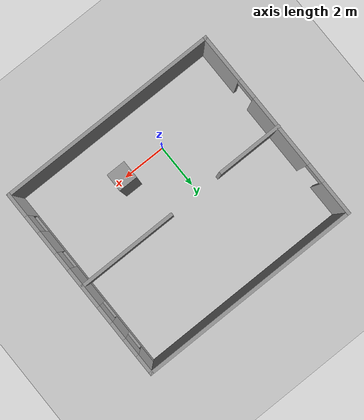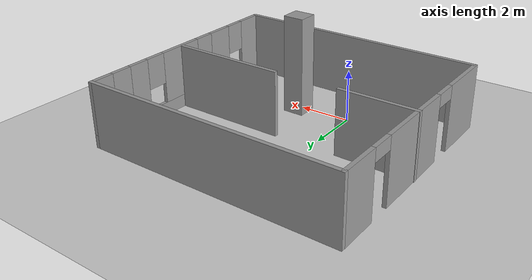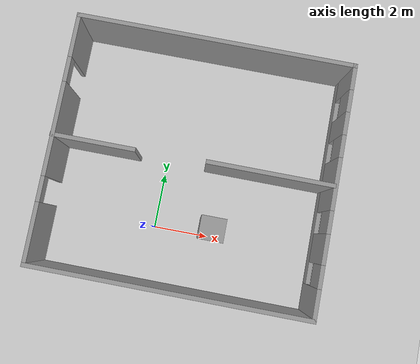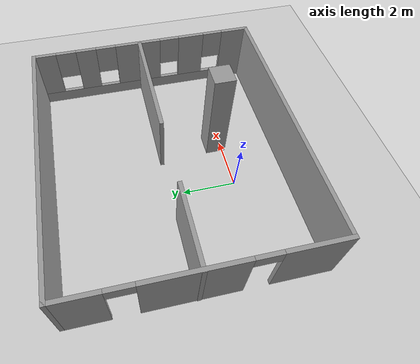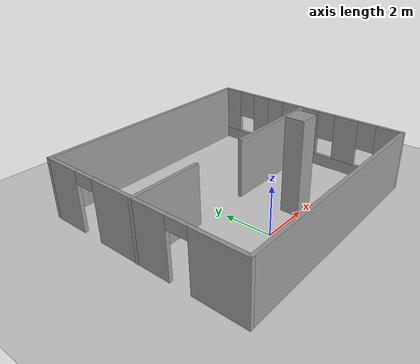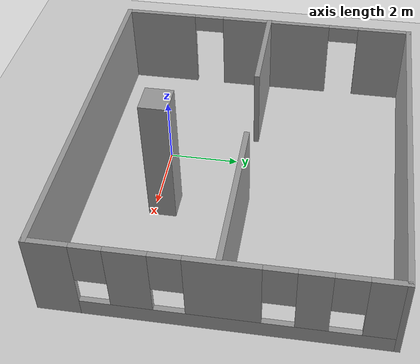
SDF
<sdf version="1.6">
 <world name="ur_world_1">
  <light name="sun" type="directional">
   <cast_shadows>0</cast_shadows>
   <pose>0 0 10 0 -0 0</pose>
   <diffuse>0.8 0.8 0.8 1</diffuse>
   <specular>0.2 0.2 0.2 1</specular>
   <attenuation>
    <range>1000</range>
    <constant>0.9</constant>
    <linear>0.01</linear>
    <quadratic>0.001</quadratic>
   </attenuation>
   <direction>-0.5 0.1 -0.9</direction>
  </light>
  <model name="ground_plane">
   <static>1</static>
   <link name="link">
    <collision name="collision">
     <geometry><plane><normal>0 0 1</normal><size>100 100</size></plane></geometry>
     <surface>
      <contact><collide_bitmask>65535</collide_bitmask></contact>
      <friction><ode><mu>100</mu><mu2>50</mu2></ode></friction>
     </surface>
    </collision>
    <visual name="visual">
     <cast_shadows>0</cast_shadows>
     <geometry><plane><normal>0 0 1</normal><size>100 100</size></plane></geometry>
     <material>
      <script><uri>file://media/materials/scripts/gazebo.material</uri><name>Gazebo/Grey</name></script>
     </material>
    </visual>
   </link>
  </model>
  <gravity>0 0 -9.8</gravity>
  <magnetic_field>6e-06 2.3e-05 -4.2e-05</magnetic_field>
  <atmosphere type="adiabatic"/>
  <physics name="default_physics" default="0" type="ode">
   <max_step_size>0.001</max_step_size>
   <real_time_factor>1</real_time_factor>
   <real_time_update_rate>3000</real_time_update_rate>
  </physics>
  <scene><ambient>0.4 0.4 0.4 1</ambient><background>0.7 0.7 0.7 1</background><shadows>0</shadows></scene>
  <audio><device>default</device></audio>
  <spherical_coordinates>
   <surface_model>EARTH_WGS84</surface_model>
   <latitude_deg>0</latitude_deg>
   <longitude_deg>0</longitude_deg>
   <elevation>0</elevation>
   <heading_deg>0</heading_deg>
  </spherical_coordinates>
  <model name="workshop_modify">
   <pose>1.00561 2.35752 0 0 -0 0</pose>
   <link name="Wall_0">
    <collision name="Wall_0_Collision">
     <geometry><box><size>10 0.15 2.5</size></box></geometry>
     <pose>0 0 1.25 0 -0 0</pose>
    </collision>
    <visual name="Wall_0_Visual">
     <pose>0 0 1.25 0 -0 0</pose>
     <geometry><box><size>10 0.15 2.5</size></box></geometry>
     <material>
      <script><uri>file://media/materials/scripts/gazebo.material</uri><name>Gazebo/Grey</name></script>
      <ambient>1 1 1 1</ambient>
     </material>
     <meta><layer>0</layer></meta>
    </visual>
    <pose>0.008121 -4.425 0 0 -0 0</pose>
   </link>
   <link name="Wall_1">
    <pose>4.93312 0 0 0 -0 1.5708</pose>
    <visual name="Wall_1_Visual_0">
     <pose>-3.92814 0 1.25 0 -0 0</pose>
     <geometry><box><size>1.14372 0.15 2.5</size></box></geometry>
     <material>
      <script><uri>file://media/materials/scripts/gazebo.material</uri><name>Gazebo/Grey</name></script>
      <ambient>1 1 1 1</ambient>
     </material>
     <meta><layer>0</layer></meta>
    </visual>
    <collision name="Wall_1_Collision_0">
     <geometry><box><size>1.14372 0.15 2.5</size></box></geometry>
     <pose>-3.92814 0 1.25 0 -0 0</pose>
    </collision>
    <visual name="Wall_1_Visual_1">
     <pose>0.57186 0 0.25 0 -0 0</pose>
     <geometry><box><size>7.85628 0.15 0.5</size></box></geometry>
     <material>
      <script><uri>file://media/materials/scripts/gazebo.material</uri><name>Gazebo/Grey</name></script>
      <ambient>1 1 1 1</ambient>
     </material>
     <meta><layer>0</layer></meta>
    </visual>
    <collision name="Wall_1_Collision_1">
     <geometry><box><size>7.85628 0.15 0.5</size></box></geometry>
     <pose>0.57186 0 0.25 0 -0 0</pose>
    </collision>
    <visual name="Wall_1_Visual_2">
     <pose>-2.02855 0 1.5 0 -0 0</pose>
     <geometry><box><size>1.05547 0.15 2</size></box></geometry>
     <material>
      <script><uri>file://media/materials/scripts/gazebo.material</uri><name>Gazebo/Grey</name></script>
      <ambient>1 1 1 1</ambient>
     </material>
     <meta><layer>0</layer></meta>
    </visual>
    <collision name="Wall_1_Collision_2">
     <geometry><box><size>1.05547 0.15 2</size></box></geometry>
     <pose>-2.02855 0 1.5 0 -0 0</pose>
    </collision>
    <visual name="Wall_1_Visual_3">
     <pose>0.222349 0 1.5 0 -0 0</pose>
     <geometry><box><size>1.84632 0.15 2</size></box></geometry>
     <material>
      <script><uri>file://media/materials/scripts/gazebo.material</uri><name>Gazebo/Grey</name></script>
      <ambient>1 1 1 1</ambient>
     </material>
     <meta><layer>0</layer></meta>
    </visual>
    <collision name="Wall_1_Collision_3">
     <geometry><box><size>1.84632 0.15 2</size></box></geometry>
     <pose>0.222349 0 1.5 0 -0 0</pose>
    </collision>
    <visual name="Wall_1_Visual_4">
     <pose>2.35157 0 1.5 0 -0 0</pose>
     <geometry><box><size>0.812128 0.15 2</size></box></geometry>
     <material>
      <script><uri>file://media/materials/scripts/gazebo.material</uri><name>Gazebo/Grey</name></script>
      <ambient>1 1 1 1</ambient>
     </material>
     <meta><layer>0</layer></meta>
    </visual>
    <collision name="Wall_1_Collision_4">
     <geometry><box><size>0.812128 0.15 2</size></box></geometry>
     <pose>2.35157 0 1.5 0 -0 0</pose>
    </collision>
    <visual name="Wall_1_Visual_5">
     <pose>4.02882 0 1.5 0 -0 0</pose>
     <geometry><box><size>0.942362 0.15 2</size></box></geometry>
     <material>
      <script><uri>file://media/materials/scripts/gazebo.material</uri><name>Gazebo/Grey</name></script>
      <ambient>1 1 1 1</ambient>
     </material>
     <meta><layer>0</layer></meta>
    </visual>
    <collision name="Wall_1_Collision_5">
     <geometry><box><size>0.942362 0.15 2</size></box></geometry>
     <pose>4.02882 0 1.5 0 -0 0</pose>
    </collision>
    <visual name="Wall_1_Visual_6">
     <pose>-2.95628 0 1.9 0 -0 0</pose>
     <geometry><box><size>0.8 0.15 1.2</size></box></geometry>
     <material>
      <script><uri>file://media/materials/scripts/gazebo.material</uri><name>Gazebo/Grey</name></script>
      <ambient>1 1 1 1</ambient>
     </material>
     <meta><layer>0</layer></meta>
    </visual>
    <collision name="Wall_1_Collision_6">
     <geometry><box><size>0.8 0.15 1.2</size></box></geometry>
     <pose>-2.95628 0 1.9 0 -0 0</pose>
    </collision>
    <visual name="Wall_1_Visual_7">
     <pose>-1.10081 0 1.9 0 -0 0</pose>
     <geometry><box><size>0.8 0.15 1.2</size></box></geometry>
     <material>
      <script><uri>file://media/materials/scripts/gazebo.material</uri><name>Gazebo/Grey</name></script>
      <ambient>1 1 1 1</ambient>
     </material>
     <meta><layer>0</layer></meta>
    </visual>
    <collision name="Wall_1_Collision_7">
     <geometry><box><size>0.8 0.15 1.2</size></box></geometry>
     <pose>-1.10081 0 1.9 0 -0 0</pose>
    </collision>
    <visual name="Wall_1_Visual_8">
     <pose>1.54551 0 1.9 0 -0 0</pose>
     <geometry><box><size>0.8 0.15 1.2</size></box></geometry>
     <material>
      <script><uri>file://media/materials/scripts/gazebo.material</uri><name>Gazebo/Grey</name></script>
      <ambient>1 1 1 1</ambient>
     </material>
     <meta><layer>0</layer></meta>
    </visual>
    <collision name="Wall_1_Collision_8">
     <geometry><box><size>0.8 0.15 1.2</size></box></geometry>
     <pose>1.54551 0 1.9 0 -0 0</pose>
    </collision>
    <visual name="Wall_1_Visual_9">
     <pose>3.15764 0 1.9 0 -0 0</pose>
     <geometry><box><size>0.8 0.15 1.2</size></box></geometry>
     <material>
      <script><uri>file://media/materials/scripts/gazebo.material</uri><name>Gazebo/Grey</name></script>
      <ambient>1 1 1 1</ambient>
     </material>
     <meta><layer>0</layer></meta>
    </visual>
    <collision name="Wall_1_Collision_9">
     <geometry><box><size>0.8 0.15 1.2</size></box></geometry>
     <pose>3.15764 0 1.9 0 -0 0</pose>
    </collision>
   </link>
   <link name="Wall_2">
    <collision name="Wall_2_Collision">
     <geometry><box><size>10 0.15 2.5</size></box></geometry>
     <pose>0 0 1.25 0 -0 0</pose>
    </collision>
    <visual name="Wall_2_Visual">
     <pose>0 0 1.25 0 -0 0</pose>
     <geometry><box><size>10 0.15 2.5</size></box></geometry>
     <material>
      <script><uri>file://media/materials/scripts/gazebo.material</uri><name>Gazebo/Grey</name></script>
      <ambient>1 1 1 1</ambient>
     </material>
     <meta><layer>0</layer></meta>
    </visual>
    <pose>0.008121 4.425 0 0 -0 3.14159</pose>
   </link>
   <link name="Wall_3">
    <pose>-4.91688 0 0 0 -0 -1.5708</pose>
    <visual name="Wall_3_Visual_0">
     <pose>-3.68881 0 1.25 0 -0 0</pose>
     <geometry><box><size>1.62238 0.15 2.5</size></box></geometry>
     <material>
      <script><uri>file://media/materials/scripts/gazebo.material</uri><name>Gazebo/Grey</name></script>
      <ambient>1 1 1 1</ambient>
     </material>
     <meta><layer>0</layer></meta>
    </visual>
    <collision name="Wall_3_Collision_0">
     <geometry><box><size>1.62238 0.15 2.5</size></box></geometry>
     <pose>-3.68881 0 1.25 0 -0 0</pose>
    </collision>
    <visual name="Wall_3_Visual_1">
     <pose>-0.298393 0 1.25 0 -0 0</pose>
     <geometry><box><size>3.35845 0.15 2.5</size></box></geometry>
     <material>
      <script><uri>file://media/materials/scripts/gazebo.material</uri><name>Gazebo/Grey</name></script>
      <ambient>1 1 1 1</ambient>
     </material>
     <meta><layer>0</layer></meta>
    </visual>
    <collision name="Wall_3_Collision_1">
     <geometry><box><size>3.35845 0.15 2.5</size></box></geometry>
     <pose>-0.298393 0 1.25 0 -0 0</pose>
    </collision>
    <visual name="Wall_3_Visual_2">
     <pose>3.39042 0 1.25 0 -0 0</pose>
     <geometry><box><size>2.21917 0.15 2.5</size></box></geometry>
     <material>
      <script><uri>file://media/materials/scripts/gazebo.material</uri><name>Gazebo/Grey</name></script>
      <ambient>1 1 1 1</ambient>
     </material>
     <meta><layer>0</layer></meta>
    </visual>
    <collision name="Wall_3_Collision_2">
     <geometry><box><size>2.21917 0.15 2.5</size></box></geometry>
     <pose>3.39042 0 1.25 0 -0 0</pose>
    </collision>
    <visual name="Wall_3_Visual_3">
     <pose>-2.42762 0 2.25 0 -0 0</pose>
     <geometry><box><size>0.9 0.15 0.5</size></box></geometry>
     <material>
      <script><uri>file://media/materials/scripts/gazebo.material</uri><name>Gazebo/Grey</name></script>
      <ambient>1 1 1 1</ambient>
     </material>
     <meta><layer>0</layer></meta>
    </visual>
    <collision name="Wall_3_Collision_3">
     <geometry><box><size>0.9 0.15 0.5</size></box></geometry>
     <pose>-2.42762 0 2.25 0 -0 0</pose>
    </collision>
    <visual name="Wall_3_Visual_4">
     <pose>1.83083 0 2.25 0 -0 0</pose>
     <geometry><box><size>0.9 0.15 0.5</size></box></geometry>
     <material>
      <script><uri>file://media/materials/scripts/gazebo.material</uri><name>Gazebo/Grey</name></script>
      <ambient>1 1 1 1</ambient>
     </material>
     <meta><layer>0</layer></meta>
    </visual>
    <collision name="Wall_3_Collision_4">
     <geometry><box><size>0.9 0.15 0.5</size></box></geometry>
     <pose>1.83083 0 2.25 0 -0 0</pose>
    </collision>
   </link>
   <link name="Wall_7">
    <collision name="Wall_7_Collision">
     <geometry><box><size>3 0.15 2.5</size></box></geometry>
     <pose>0 0 1.25 0 -0 0</pose>
    </collision>
    <visual name="Wall_7_Visual">
     <pose>0 0 1.25 0 -0 0</pose>
     <geometry><box><size>3 0.15 2.5</size></box></geometry>
     <material>
      <script><uri>file://media/materials/scripts/gazebo.material</uri><name>Gazebo/Grey</name></script>
      <ambient>1 1 1 1</ambient>
     </material>
     <meta><layer>0</layer></meta>
    </visual>
    <pose>-3.50812 0.08547 0 0 -0 0</pose>
   </link>
   <link name="Wall_9">
    <collision name="Wall_9_Collision">
     <geometry><box><size>4.5 0.15 2.5</size></box></geometry>
     <pose>0 0 1.25 0 -0 0</pose>
    </collision>
    <visual name="Wall_9_Visual">
     <pose>0 0 1.25 0 -0 0</pose>
     <geometry><box><size>4.5 0.15 2.5</size></box></geometry>
     <material>
      <script><uri>file://media/materials/scripts/gazebo.material</uri><name>Gazebo/Grey</name></script>
      <ambient>1 1 1 1</ambient>
     </material>
     <meta><layer>0</layer></meta>
    </visual>
    <pose>2.68631 0.146305 0 0 -0 3.14159</pose>
   </link>
   <static>1</static>
  </model>
  <model name="unit_box">
   <pose>2.03715 0.269404 1.91402 1e-06 -0 -1.9e-05</pose>
   <link name="link">
    <inertial>
     <mass>1</mass>
     <inertia>
      <ixx>0.166667</ixx>
      <ixy>0</ixy>
      <ixz>0</ixz>
      <iyy>0.166667</iyy>
      <iyz>0</iyz>
      <izz>0.166667</izz>
     </inertia>
    </inertial>
    <collision name="collision"><geometry><box><size>0.817361 0.76302 3.82804</size></box></geometry></collision>
    <visual name="visual">
     <geometry><box><size>0.817361 0.76302 3.82804</size></box></geometry>
     <material>
      <script><name>Gazebo/Grey</name><uri>file://media/materials/scripts/gazebo.material</uri></script>
     </material>
    </visual>
   </link>
  </model>
 </world>
</sdf>
